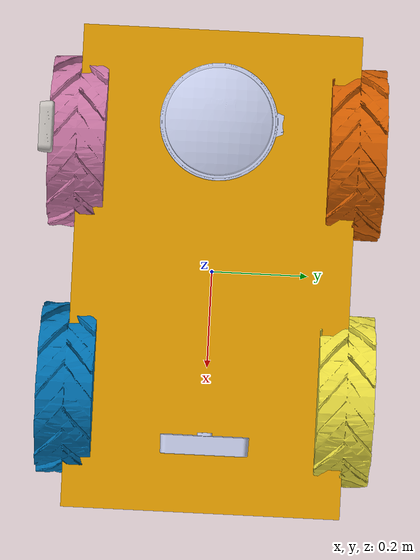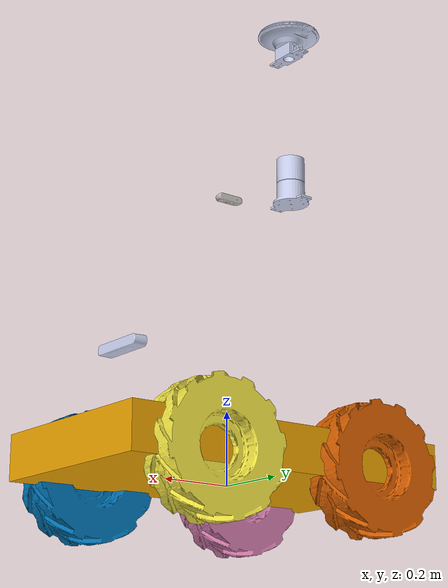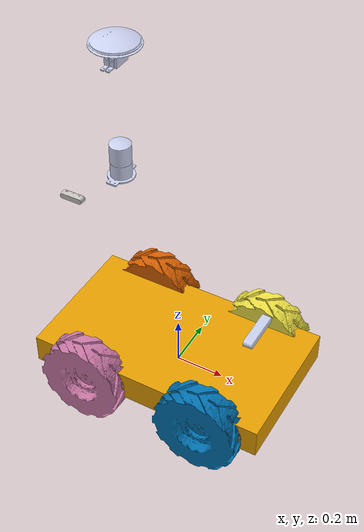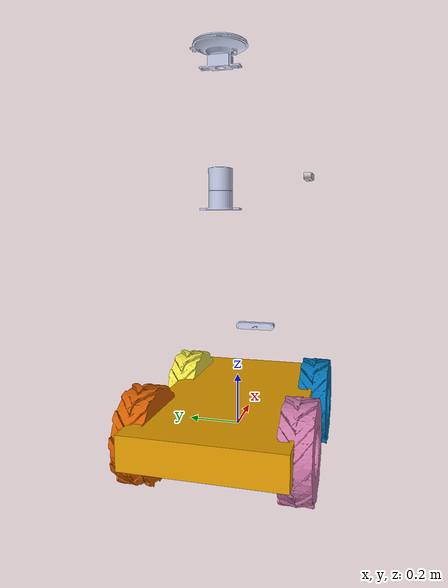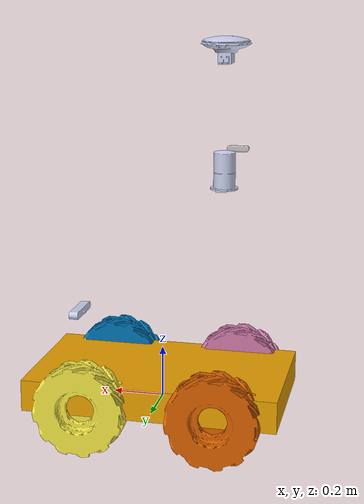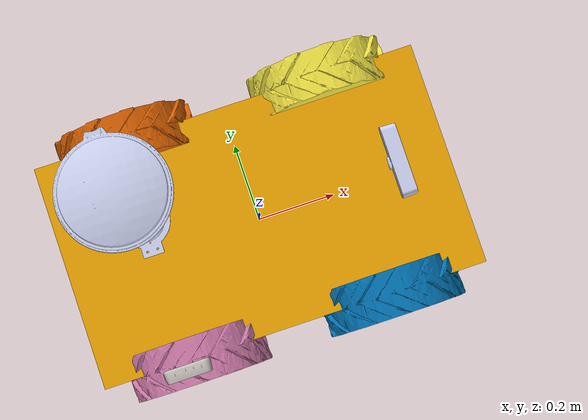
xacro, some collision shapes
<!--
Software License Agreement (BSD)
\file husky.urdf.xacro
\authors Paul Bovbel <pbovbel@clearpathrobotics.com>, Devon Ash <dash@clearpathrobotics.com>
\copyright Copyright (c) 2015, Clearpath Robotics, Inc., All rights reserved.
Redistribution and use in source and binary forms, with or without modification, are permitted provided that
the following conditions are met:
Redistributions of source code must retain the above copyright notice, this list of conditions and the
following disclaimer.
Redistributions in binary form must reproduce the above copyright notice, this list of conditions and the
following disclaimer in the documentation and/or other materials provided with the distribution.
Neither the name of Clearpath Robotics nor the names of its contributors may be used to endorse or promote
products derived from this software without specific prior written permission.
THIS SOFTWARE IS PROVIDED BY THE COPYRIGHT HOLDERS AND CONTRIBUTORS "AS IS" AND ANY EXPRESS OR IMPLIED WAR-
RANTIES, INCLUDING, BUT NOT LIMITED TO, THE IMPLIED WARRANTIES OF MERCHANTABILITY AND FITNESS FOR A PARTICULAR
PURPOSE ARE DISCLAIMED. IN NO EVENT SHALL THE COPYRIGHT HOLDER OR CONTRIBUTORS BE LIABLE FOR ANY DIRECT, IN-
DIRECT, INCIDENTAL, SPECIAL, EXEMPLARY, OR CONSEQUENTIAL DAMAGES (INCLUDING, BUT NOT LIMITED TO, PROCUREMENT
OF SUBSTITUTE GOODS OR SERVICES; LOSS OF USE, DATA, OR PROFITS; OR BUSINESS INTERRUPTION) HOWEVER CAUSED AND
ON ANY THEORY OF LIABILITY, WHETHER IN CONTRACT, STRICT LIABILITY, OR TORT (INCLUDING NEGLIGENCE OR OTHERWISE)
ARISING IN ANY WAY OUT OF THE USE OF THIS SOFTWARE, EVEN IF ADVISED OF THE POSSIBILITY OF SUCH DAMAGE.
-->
<?xml version="1.0"?>
<robot name="husky" xmlns:xacro="http://ros.org/wiki/xacro">

  <xacro:property name="husky_front_bumper_extend" value="$(optenv HUSKY_FRONT_BUMPER_EXTEND 0)" />
  <xacro:property name="husky_rear_bumper_extend" value="$(optenv HUSKY_REAR_BUMPER_EXTEND 0)" />

  <xacro:arg name="robot_namespace" default="/" />
  <xacro:arg name="urdf_extras" default="empty.urdf" />

  <!-- Included URDF/XACRO Files -->
  <xacro:include filename="$(find husky_description)/urdf/wheel.urdf.xacro" />

  <xacro:property name="M_PI" value="3.14159"/>

  <!-- Base Size -->
  <xacro:property name="base_x_size" value="0.98740000" />
  <xacro:property name="base_y_size" value="0.57090000" />
  <xacro:property name="base_z_size" value="0.24750000" />

  <!-- Wheel Mounting Positions -->
  <xacro:property name="wheelbase" value="0.5120" />
  <xacro:property name="track" value="0.5708" />
  <xacro:property name="wheel_vertical_offset" value="0.03282" />

  <!-- Wheel Properties -->
  <xacro:property name="wheel_length" value="0.1143" />
  <xacro:property name="wheel_radius" value="0.1651" />

  <!-- Base link is the center of the robot's bottom plate -->
  <link name="base_link">
    <visual>
      <origin xyz="0 0 0" rpy="0 0 0" />
      <geometry>
        <mesh filename="package://smartagurdf/meshes/base_link.STL" />
      </geometry>
    </visual>
    <collision>
      <origin xyz="${( husky_front_bumper_extend - husky_rear_bumper_extend ) / 2.0} 0 ${base_z_size/4}" rpy="0 0 0" />
      <geometry>
        <box size="${ base_x_size + husky_front_bumper_extend + husky_rear_bumper_extend } ${base_y_size} ${base_z_size/2}"/>
      </geometry>
    </collision>
    <collision>
      <origin xyz="0 0 ${base_z_size*3/4-0.01}" rpy="0 0 0" />
      <geometry>
        <box size="${base_x_size*4/5} ${base_y_size} ${base_z_size/2-0.02}"/>
      </geometry>
    </collision>
  </link>

  <!-- Base footprint is on the ground under the robot -->
  <link name="base_footprint"/>

  <joint name="base_footprint_joint" type="fixed">
    <origin xyz="0 0 ${wheel_vertical_offset - wheel_radius}" rpy="0 0 0" />
    <parent link="base_link" />
    <child link="base_footprint" />
  </joint>

  <!-- IMU Link is the standard mounting position for the UM6 IMU.-->
  <!-- Can be modified with environment variables in /etc/ros/setup.bash -->
  <link name="imu_link"/>
  <joint name="imu_joint" type="fixed">
    <origin xyz="$(optenv HUSKY_IMU_XYZ 0.19 0 0.149)" rpy="$(optenv HUSKY_IMU_RPY 0 -1.5708 3.1416)" />
    <parent link="base_link" />
    <child link="imu_link" />
  </joint>
  <gazebo reference="imu_link">
  </gazebo>

  <!-- Husky wheel macros -->
  <xacro:husky_wheel wheel_prefix="front_left">
    <origin xyz="${wheelbase/2} ${track/2} ${wheel_vertical_offset}" rpy="0 0 0" />
  </xacro:husky_wheel>
  <xacro:husky_wheel wheel_prefix="front_right">
    <origin xyz="${wheelbase/2} ${-track/2} ${wheel_vertical_offset}" rpy="0 0 0" />
  </xacro:husky_wheel>
  <xacro:husky_wheel wheel_prefix="rear_left">
    <origin xyz="${-wheelbase/2} ${track/2} ${wheel_vertical_offset}" rpy="0 0 0" />
  </xacro:husky_wheel>
  <xacro:husky_wheel wheel_prefix="rear_right">
    <origin xyz="${-wheelbase/2} ${-track/2} ${wheel_vertical_offset}" rpy="0 0 0" />
  </xacro:husky_wheel>

  <gazebo>
    <plugin name="gazebo_ros_control" filename="libgazebo_ros_control.so">
      <robotNamespace>$(arg robot_namespace)</robotNamespace>
      <legacyModeNS>true</legacyModeNS>
    </plugin>
  </gazebo>

  <gazebo>
    <plugin name="imu_controller" filename="libhector_gazebo_ros_imu.so">
      <robotNamespace>$(arg robot_namespace)</robotNamespace>
      <updateRate>50.0</updateRate>
      <bodyName>base_link</bodyName>
      <topicName>imu/data</topicName>
      <accelDrift>0.005 0.005 0.005</accelDrift>
      <accelGaussianNoise>0.005 0.005 0.005</accelGaussianNoise>
      <rateDrift>0.005 0.005 0.005 </rateDrift>
      <rateGaussianNoise>0.005 0.005 0.005 </rateGaussianNoise>
      <headingDrift>0.005</headingDrift>
      <headingGaussianNoise>0.005</headingGaussianNoise>
    </plugin>
  </gazebo>

  <gazebo>
    <plugin name="gps_controller" filename="libhector_gazebo_ros_gps.so">
      <robotNamespace>$(arg robot_namespace)</robotNamespace>
      <updateRate>40</updateRate>
      <bodyName>base_link</bodyName>
      <topicName>navsat/fix</topicName>
      <velocityTopicName>navsat/vel</velocityTopicName>
      <referenceLatitude>49.9</referenceLatitude>
      <referenceLongitude>8.9</referenceLongitude>
      <referenceHeading>0</referenceHeading>
      <referenceAltitude>0</referenceAltitude>
      <drift>0.0001 0.0001 0.0001</drift>
    </plugin>
  </gazebo>

  <link
    name="zed_link">
    <inertial>
      <origin
        xyz="0.00456159896851871 9.12690621725221E-07 0.01494133462499"
        rpy="0 0 0" />
      <mass
        value="0.167694642835059" />
      <inertia
        ixx="0.000382830412066939"
        ixy="3.28189191039499E-09"
        ixz="-6.45241842886214E-08"
        iyy="3.24806894733886E-05"
        iyz="1.3857903167337E-09"
        izz="0.000390523047546263" />
    </inertial>
    <visual>
      <origin
        xyz="0 0 0"
        rpy="0 0 0" />
      <geometry>
        <mesh
          filename="package://smartagurdf/meshes/zed_link.STL" />
      </geometry>
      <material
        name="">
        <color
          rgba="0.792156862745098 0.819607843137255 0.933333333333333 1" />
      </material>
    </visual>
    <collision>
      <origin
        xyz="0 0 0"
        rpy="0 0 0" />
      <geometry>
        <mesh
          filename="package://smartagurdf/meshes/zed_link.STL" />
      </geometry>
    </collision>
  </link>
  <joint
    name="zed_joint"
    type="fixed">
    <origin
      xyz="0.33638 0.002 0.314"
      rpy="0 0 0" />
    <parent
      link="base_link" />
    <child
      link="zed_link" />
    <axis
      xyz="0 0 0" />
  </joint>
  <link
    name="lidar_link">
    <inertial>
      <origin
        xyz="5.89805981832114E-16 3.2612801348364E-16 -0.0330286093572053"
        rpy="0 0 0" />
      <mass
        value="0.786253823219787" />
      <inertia
        ixx="0.00151021720928138"
        ixy="1.01041962373767E-20"
        ixz="5.76279958654395E-19"
        iyy="0.00147697392396542"
        iyz="3.00989440945545E-19"
        izz="0.000720422174010713" />
    </inertial>
    <visual>
      <origin
        xyz="0 0 0"
        rpy="0 0 0" />
      <geometry>
        <mesh
          filename="package://smartagurdf/meshes/lidar_link.STL" />
      </geometry>
      <material
        name="">
        <color
          rgba="0.792156862745098 0.819607843137255 0.933333333333333 1" />
      </material>
    </visual>
    <collision>
      <origin
        xyz="0 0 0"
        rpy="0 0 0" />
      <geometry>
        <mesh
          filename="package://smartagurdf/meshes/lidar_link.STL" />
      </geometry>
    </collision>
  </link>
  <joint
    name="lidar_joint"
    type="fixed">
    <origin
      xyz="-0.2365 0 0.95016"
      rpy="0 0 0" />
    <parent
      link="base_link" />
    <child
      link="lidar_link" />
    <axis
      xyz="0 0 0" />
  </joint>
  <link
    name="realsense_link">
    <inertial>
      <origin
        xyz="0.00152014055144201 -3.9057648565724E-07 0"
        rpy="0 0 0" />
      <mass
        value="0.0482013986778756" />
      <inertia
        ixx="2.73914552639321E-05"
        ixy="-4.25989861960233E-07"
        ixz="7.54924661317732E-09"
        iyy="3.35061188385816E-06"
        iyz="2.11610683923973E-09"
        izz="2.66521455070172E-05" />
    </inertial>
    <visual>
      <origin
        xyz="0 0 0"
        rpy="0 0 0" />
      <geometry>
        <mesh
          filename="package://smartagurdf/meshes/realsense_link.STL" />
      </geometry>
      <material
        name="">
        <color
          rgba="0.776470588235294 0.756862745098039 0.737254901960784 1" />
      </material>
    </visual>
    <collision>
      <origin
        xyz="0 0 0"
        rpy="0 0 0" />
      <geometry>
        <mesh
          filename="package://smartagurdf/meshes/realsense_link.STL" />
      </geometry>
    </collision>
  </link>
  <joint
    name="realsense_joint"
    type="fixed">
    <origin
      xyz="-0.23799 -0.29775 0.94334"
      rpy="0 0 -1.5708" />
    <parent
      link="base_link" />
    <child
      link="realsense_link" />
    <axis
      xyz="0 0 0" />
  </joint>
  <link
    name="gps_antenna_link">
    <inertial>
      <origin
        xyz="4.97017328424457E-06 0.000210055548435083 -0.00458781110719353"
        rpy="0 0 0" />
      <mass
        value="1.02990079135601" />
      <inertia
        ixx="0.00161521332509735"
        ixy="1.58573213761098E-08"
        ixz="-7.30355818025241E-09"
        iyy="0.00157973941386838"
        iyz="2.70465167932831E-06"
        izz="0.00284354572566057" />
    </inertial>
    <visual>
      <origin
        xyz="0 0 0"
        rpy="0 0 0" />
      <geometry>
        <mesh
          filename="package://smartagurdf/meshes/gps_antenna_link.STL" />
      </geometry>
      <material
        name="">
        <color
          rgba="0.792156862745098 0.819607843137255 0.933333333333333 1" />
      </material>
    </visual>
    <collision>
      <origin
        xyz="0 0 0"
        rpy="0 0 0" />
      <geometry>
        <mesh
          filename="package://smartagurdf/meshes/gps_antenna_link.STL" />
      </geometry>
    </collision>
  </link>
  <joint
    name="gps_antenna_joint"
    type="fixed">
    <origin
      xyz="-0.23658 -0.0006 1.3862"
      rpy="0 0 0" />
    <parent
      link="base_link" />
    <child
      link="gps_antenna_link" />
    <axis
      xyz="0 0 0" />
  </joint>

</robot>

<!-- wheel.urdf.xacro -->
<robot xmlns:xacro="http://ros.org/wiki/xacro" name="husky_wheel">

	<xacro:macro name="husky_wheel" params="wheel_prefix *joint_pose">
		<link name="${wheel_prefix}_wheel_link">
			<inertial>
				<mass value="2.637" />
				<origin xyz="0 0 0" />
				<inertia  ixx="0.02467" ixy="0" ixz="0" iyy="0.04411" iyz="0" izz="0.02467" />
			</inertial>
			<visual>
				<origin xyz="0 0 0" rpy="0 0 0" />
				<geometry>
					<mesh filename="package://husky_description/meshes/wheel.dae" />
				</geometry>
			</visual>
			<collision>
				<origin xyz="0 0 0" rpy="${M_PI/2} 0 0" />
				<geometry>
					<cylinder length="${wheel_length}" radius="${wheel_radius}" />
				</geometry>
			</collision>
		</link>

		<gazebo reference="${wheel_prefix}_wheel_link">
			<mu1 value="1.0"/>
			<mu2 value="1.0"/>
			<kp value="10000000.0" />
			<kd value="1.0" />
			<fdir1 value="1 0 0"/>
		</gazebo>

		<joint name="${wheel_prefix}_wheel" type="continuous">
			<parent link="base_link"/>
			<child link="${wheel_prefix}_wheel_link"/>
			<xacro:insert_block name="joint_pose"/>
			<axis xyz="0 1 0" rpy="0 0 0" />
		</joint>

		<transmission name="${wheel_prefix}_wheel_trans" type="SimpleTransmission">
			<type>transmission_interface/SimpleTransmission</type>
			<actuator name="${wheel_prefix}_wheel_motor">
				<mechanicalReduction>1</mechanicalReduction>
			</actuator>
			<joint name="${wheel_prefix}_wheel">
				<hardwareInterface>VelocityJointInterface</hardwareInterface>
			</joint>
		</transmission>

	</xacro:macro>
</robot>
